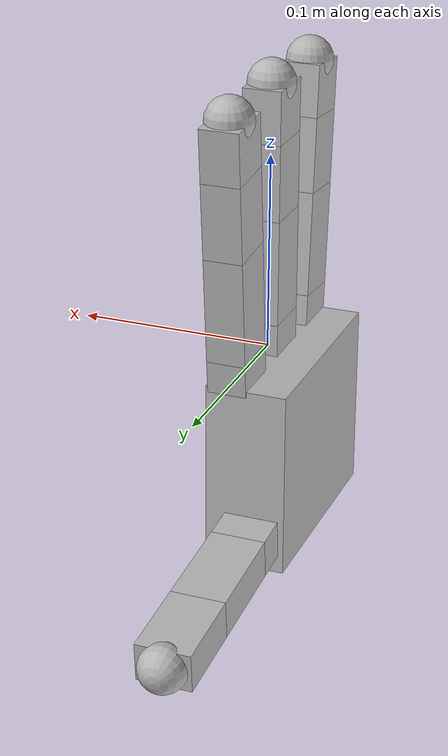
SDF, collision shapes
<sdf version='1.7'>
  <model name='allegro_hand_right'>
    <link name='palm_link'>
      <inertial>
        <pose>0 0 0.0475 0 -0 0</pose>
        <mass>0.4154</mass>
        <inertia>
          <ixx>0.0001</ixx>
          <ixy>0</ixy>
          <ixz>0</ixz>
          <iyy>0.0001</iyy>
          <iyz>0</iyz>
          <izz>0.0001</izz>
        </inertia>
      </inertial>
      <collision name='palm_link_collision'>
        <pose>-0.0093 0 -0.0475 0 -0 0</pose>
        <geometry>
          <box>
            <size>0.0408 0.113 0.095</size>
          </box>
        </geometry>
      </collision>
      <visual name='palm_link_visual'>
        <pose>0 0 0 0 -0 0</pose>
        <geometry>
          <mesh>
            <scale>1 1 1</scale>
            <uri>model://allegro_hand_description/meshes/base_link.STL</uri>
          </mesh>
        </geometry>
      </visual>
    </link>
    <joint name='joint_0.0' type='revolute'>
      <pose relative_to='palm_link'>0 0.0435 -0.001542 -0.087266 0 0</pose>
      <parent>palm_link</parent>
      <child>link_0.0</child>
      <axis>
        <xyz>0 0 1</xyz>
        <limit>
          <lower>-0.47</lower>
          <upper>0.47</upper>
          <effort>15</effort>
          <velocity>7</velocity>
        </limit>
        <dynamics>
          <damping>3</damping>
          <friction>10</friction>
          <spring_reference>0</spring_reference>
          <spring_stiffness>0</spring_stiffness>
        </dynamics>
      </axis>
    </joint>
    <link name='link_0.0'>
      <pose relative_to='joint_0.0'>0 0 0 0 -0 0</pose>
      <inertial>
        <pose>0 0 0 0 -0 0</pose>
        <mass>0.0119</mass>
        <inertia>
          <ixx>1.01667e-06</ixx>
          <ixy>0</ixy>
          <ixz>0</ixz>
          <iyy>6.47677e-07</iyy>
          <iyz>0</iyz>
          <izz>1.01667e-06</izz>
        </inertia>
      </inertial>
      <collision name='link_0.0_collision'>
        <pose>0 0 0.0082 0 -0 0</pose>
        <geometry>
          <box>
            <size>0.0196 0.0275 0.0164</size>
          </box>
        </geometry>
      </collision>
      <visual name='link_0.0_visual'>
        <pose>0 0 0 0 -0 0</pose>
        <geometry>
          <mesh>
            <scale>1 1 1</scale>
            <uri>model://allegro_hand_description/meshes/link_0.0.STL</uri>
          </mesh>
        </geometry>
      </visual>
    </link>
    <joint name='joint_1.0' type='revolute'>
      <pose relative_to='link_0.0'>0 0 0.0164 0 -0 0</pose>
      <parent>link_0.0</parent>
      <child>link_1.0</child>
      <axis>
        <xyz>0 1 0</xyz>
        <limit>
          <lower>-0.196</lower>
          <upper>1.61</upper>
          <effort>15</effort>
          <velocity>7</velocity>
        </limit>
        <dynamics>
          <damping>3</damping>
          <friction>5</friction>
          <spring_reference>0</spring_reference>
          <spring_stiffness>0</spring_stiffness>
        </dynamics>
      </axis>
    </joint>
    <link name='link_1.0'>
      <pose relative_to='joint_1.0'>0 0 0 0 -0 0</pose>
      <inertial>
        <pose>0 0 0 0 -0 0</pose>
        <mass>0.065</mass>
        <inertia>
          <ixx>7.95654e-05</ixx>
          <ixy>1.7199e-05</ixy>
          <ixz>8.75875e-06</ixz>
          <iyy>2.47089e-05</iyy>
          <iyz>2.41313e-05</iyz>
          <izz>7.95654e-05</izz>
        </inertia>
      </inertial>
      <collision name='link_1.0_collision'>
        <pose>0 0 0.027 0 -0 0</pose>
        <geometry>
          <box>
            <size>0.0196 0.0275 0.054</size>
          </box>
        </geometry>
      </collision>
      <visual name='link_1.0_visual'>
        <pose>0 0 0 0 -0 0</pose>
        <geometry>
          <mesh>
            <scale>1 1 1</scale>
            <uri>model://allegro_hand_description/meshes/link_1.0.STL</uri>
          </mesh>
        </geometry>
      </visual>
    </link>
    <joint name='joint_2.0' type='revolute'>
      <pose relative_to='link_1.0'>0 0 0.054 0 -0 0</pose>
      <parent>link_1.0</parent>
      <child>link_2.0</child>
      <axis>
        <xyz>0 1 0</xyz>
        <limit>
          <lower>-0.174</lower>
          <upper>1.709</upper>
          <effort>15</effort>
          <velocity>7</velocity>
        </limit>
        <dynamics>
          <damping>8</damping>
          <friction>10</friction>
          <spring_reference>0</spring_reference>
          <spring_stiffness>0</spring_stiffness>
        </dynamics>
      </axis>
    </joint>
    <link name='link_2.0'>
      <pose relative_to='joint_2.0'>0 0 0 0 -0 0</pose>
      <inertial>
        <pose>0 0 0 0 -0 0</pose>
        <mass>0.0355</mass>
        <inertia>
          <ixx>2.63979e-05</ixx>
          <ixy>6.67968e-06</ixy>
          <ixz>4.78363e-06</ixz>
          <iyy>1.34949e-05</iyy>
          <iyz>9.372e-06</iyz>
          <izz>2.63979e-05</izz>
        </inertia>
      </inertial>
      <collision name='link_2.0_collision'>
        <pose>0 0 0.0192 0 -0 0</pose>
        <geometry>
          <box>
            <size>0.0196 0.0275 0.0384</size>
          </box>
        </geometry>
      </collision>
      <visual name='link_2.0_visual'>
        <pose>0 0 0 0 -0 0</pose>
        <geometry>
          <mesh>
            <scale>1 1 1</scale>
            <uri>model://allegro_hand_description/meshes/link_2.0.STL</uri>
          </mesh>
        </geometry>
      </visual>
    </link>
    <joint name='joint_3.0' type='revolute'>
      <pose relative_to='link_2.0'>0 0 0.0384 0 -0 0</pose>
      <parent>link_2.0</parent>
      <child>link_3.0</child>
      <axis>
        <xyz>0 1 0</xyz>
        <limit>
          <lower>-0.227</lower>
          <upper>1.618</upper>
          <effort>15</effort>
          <velocity>7</velocity>
        </limit>
        <dynamics>
          <damping>10</damping>
          <friction>12</friction>
          <spring_reference>0</spring_reference>
          <spring_stiffness>0</spring_stiffness>
        </dynamics>
      </axis>
    </joint>
    <link name='link_3.0'>
      <pose relative_to='joint_3.0'>0 0 0 0 -0 0</pose>
      <inertial>
        <pose>0 0 0.016991 0 -0 0</pose>
        <mass>0.0264</mass>
        <inertia>
          <ixx>1.00244e-05</ixx>
          <ixy>1.25597e-06</ixy>
          <ixz>1.2936e-06</ixz>
          <iyy>8.97242e-06</iyy>
          <iyz>1.7622e-06</iyz>
          <izz>5.66925e-06</izz>
        </inertia>
      </inertial>
      <collision name='link_3.0_collision'>
        <pose>0 0 0.01335 0 -0 0</pose>
        <geometry>
          <box>
            <size>0.0196 0.0275 0.0267</size>
          </box>
        </geometry>
      </collision>
      <collision name='link_3.0_tip_collision_1'>
        <pose>0 0 0.0267 0 -0 0</pose>
        <geometry>
          <sphere>
            <radius>0.012</radius>
          </sphere>
        </geometry>
      </collision>
      <visual name='link_3.0_visual'>
        <pose>0 0 0 0 -0 0</pose>
        <geometry>
          <mesh>
            <scale>1 1 1</scale>
            <uri>model://allegro_hand_description/meshes/link_3.0.STL</uri>
          </mesh>
        </geometry>
      </visual>
      <visual name='link_3.0_tip_visual_1'>
        <pose>0 0 0.0267 0 -0 0</pose>
        <geometry>
          <mesh>
            <scale>1 1 1</scale>
            <uri>model://allegro_hand_description/meshes/link_3.0_tip.STL</uri>
          </mesh>
        </geometry>
      </visual>
    </link>
    <joint name='joint_12.0' type='revolute'>
      <pose relative_to='palm_link'>-0.0182 0.019333 -0.045987 3.14159 -1.48353 1.5708</pose>
      <parent>palm_link</parent>
      <child>link_12.0</child>
      <axis>
        <xyz>-1 0 0</xyz>
        <limit>
          <lower>0.263</lower>
          <upper>1.396</upper>
          <effort>15</effort>
          <velocity>7</velocity>
        </limit>
        <dynamics>
          <damping>3</damping>
          <friction>10</friction>
          <spring_reference>0</spring_reference>
          <spring_stiffness>0</spring_stiffness>
        </dynamics>
      </axis>
    </joint>
    <link name='link_12.0'>
      <pose relative_to='joint_12.0'>0 0 0 0 -0 0</pose>
      <inertial>
        <pose>0 0 0 0 -0 0</pose>
        <mass>0.0176</mass>
        <inertia>
          <ixx>1.89273e-05</ixx>
          <ixy>7.16716e-06</ixy>
          <ixz>5.35568e-06</ixz>
          <iyy>1.43008e-05</iyy>
          <iyz>6.8068e-06</iyz>
          <izz>1.89273e-05</izz>
        </inertia>
      </inertial>
      <collision name='link_12.0_collision'>
        <pose>-0.0179 0.009 0.0145 0 -0 0</pose>
        <geometry>
          <box>
            <size>0.0358 0.034 0.0455</size>
          </box>
        </geometry>
      </collision>
      <visual name='link_12.0_visual'>
        <pose>0 0 0 3.14159 -0 0</pose>
        <geometry>
          <mesh>
            <scale>1 1 1</scale>
            <uri>model://allegro_hand_description/meshes/link_12.0_right.STL</uri>
          </mesh>
        </geometry>
      </visual>
    </link>
    <joint name='joint_13.0' type='revolute'>
      <pose relative_to='link_12.0'>-0.027 0.005 0.0399 0 -0 0</pose>
      <parent>link_12.0</parent>
      <child>link_13.0</child>
      <axis>
        <xyz>0 0 1</xyz>
        <limit>
          <lower>-0.105</lower>
          <upper>1.163</upper>
          <effort>15</effort>
          <velocity>7</velocity>
        </limit>
        <dynamics>
          <damping>3</damping>
          <friction>5</friction>
          <spring_reference>0</spring_reference>
          <spring_stiffness>0</spring_stiffness>
        </dynamics>
      </axis>
    </joint>
    <link name='link_13.0'>
      <pose relative_to='joint_13.0'>0 0 0 0 -0 0</pose>
      <inertial>
        <pose>0 0 0 0 -0 0</pose>
        <mass>0.0119</mass>
        <inertia>
          <ixx>4.24251e-06</ixx>
          <ixy>1.03209e-06</ixy>
          <ixz>1.60353e-06</ixz>
          <iyy>4.52363e-06</iyy>
          <iyz>1.44808e-06</iyz>
          <izz>4.24251e-06</izz>
        </inertia>
      </inertial>
      <collision name='link_13.0_collision'>
        <pose>0 0 0.00885 0 -0 0</pose>
        <geometry>
          <box>
            <size>0.0196 0.0275 0.0177</size>
          </box>
        </geometry>
      </collision>
      <visual name='link_13.0_visual'>
        <pose>0 0 0 0 -0 0</pose>
        <geometry>
          <mesh>
            <scale>1 1 1</scale>
            <uri>model://allegro_hand_description/meshes/link_13.0.STL</uri>
          </mesh>
        </geometry>
      </visual>
    </link>
    <joint name='joint_14.0' type='revolute'>
      <pose relative_to='link_13.0'>0 0 0.0177 0 -0 0</pose>
      <parent>link_13.0</parent>
      <child>link_14.0</child>
      <axis>
        <xyz>0 1 0</xyz>
        <limit>
          <lower>-0.189</lower>
          <upper>1.644</upper>
          <effort>15</effort>
          <velocity>7</velocity>
        </limit>
        <dynamics>
          <damping>3</damping>
          <friction>10</friction>
          <spring_reference>0</spring_reference>
          <spring_stiffness>0</spring_stiffness>
        </dynamics>
      </axis>
    </joint>
    <link name='link_14.0'>
      <pose relative_to='joint_14.0'>0 0 0 0 -0 0</pose>
      <inertial>
        <pose>0 0 0 0 -0 0</pose>
        <mass>0.038</mass>
        <inertia>
          <ixx>4.3044e-05</ixx>
          <ixy>9.57068e-06</ixy>
          <ixz>5.1205e-06</ixz>
          <iyy>1.44452e-05</iyy>
          <iyz>1.34282e-05</iyz>
          <izz>4.3044e-05</izz>
        </inertia>
      </inertial>
      <collision name='link_14.0_collision'>
        <pose>0 0 0.0257 0 -0 0</pose>
        <geometry>
          <box>
            <size>0.0196 0.0275 0.0514</size>
          </box>
        </geometry>
      </collision>
      <visual name='link_14.0_visual'>
        <pose>0 0 0 0 -0 0</pose>
        <geometry>
          <mesh>
            <scale>1 1 1</scale>
            <uri>model://allegro_hand_description/meshes/link_14.0.STL</uri>
          </mesh>
        </geometry>
      </visual>
    </link>
    <joint name='joint_15.0' type='revolute'>
      <pose relative_to='link_14.0'>0 0 0.0514 0 -0 0</pose>
      <parent>link_14.0</parent>
      <child>link_15.0</child>
      <axis>
        <xyz>0 1 0</xyz>
        <limit>
          <lower>-0.162</lower>
          <upper>1.719</upper>
          <effort>15</effort>
          <velocity>7</velocity>
        </limit>
        <dynamics>
          <damping>3</damping>
          <friction>12</friction>
          <spring_reference>0</spring_reference>
          <spring_stiffness>0</spring_stiffness>
        </dynamics>
      </axis>
    </joint>
    <link name='link_15.0'>
      <pose relative_to='joint_15.0'>0 0 0 0 -0 0</pose>
      <inertial>
        <pose>0 0 0.012781 0 -0 0</pose>
        <mass>0.0556</mass>
        <inertia>
          <ixx>5.48675e-05</ixx>
          <ixy>8.04208e-06</ixy>
          <ixz>5.2283e-06</ixz>
          <iyy>3.66945e-05</iyy>
          <iyz>1.12835e-05</iyz>
          <izz>3.38903e-05</izz>
        </inertia>
      </inertial>
      <collision name='link_15.0_collision'>
        <pose>0 0 0.02115 0 -0 0</pose>
        <geometry>
          <box>
            <size>0.0196 0.0275 0.0423</size>
          </box>
        </geometry>
      </collision>
      <collision name='link_15.0_tip_collision_1'>
        <pose>0 0 0.0423 0 -0 0</pose>
        <geometry>
          <sphere>
            <radius>0.012</radius>
          </sphere>
        </geometry>
      </collision>
      <visual name='link_15.0_visual'>
        <pose>0 0 0 0 -0 0</pose>
        <geometry>
          <mesh>
            <scale>1 1 1</scale>
            <uri>model://allegro_hand_description/meshes/link_15.0.STL</uri>
          </mesh>
        </geometry>
      </visual>
      <visual name='link_15.0_tip_visual_1'>
        <pose>0 0 0.0423 0 -0 0</pose>
        <geometry>
          <mesh>
            <scale>1 1 1</scale>
            <uri>model://allegro_hand_description/meshes/link_15.0_tip.STL</uri>
          </mesh>
        </geometry>
      </visual>
    </link>
    <joint name='joint_4.0' type='revolute'>
      <pose relative_to='palm_link'>0 0 0.0007 0 -0 0</pose>
      <parent>palm_link</parent>
      <child>link_4.0</child>
      <axis>
        <xyz>0 0 1</xyz>
        <limit>
          <lower>-0.47</lower>
          <upper>0.47</upper>
          <effort>15</effort>
          <velocity>7</velocity>
        </limit>
        <dynamics>
          <damping>3</damping>
          <friction>10</friction>
          <spring_reference>0</spring_reference>
          <spring_stiffness>0</spring_stiffness>
        </dynamics>
      </axis>
    </joint>
    <link name='link_4.0'>
      <pose relative_to='joint_4.0'>0 0 0 0 -0 0</pose>
      <inertial>
        <pose>0 0 0 0 -0 0</pose>
        <mass>0.0119</mass>
        <inertia>
          <ixx>1.01667e-06</ixx>
          <ixy>0</ixy>
          <ixz>0</ixz>
          <iyy>6.47677e-07</iyy>
          <iyz>0</iyz>
          <izz>1.01667e-06</izz>
        </inertia>
      </inertial>
      <collision name='link_4.0_collision'>
        <pose>0 0 0.0082 0 -0 0</pose>
        <geometry>
          <box>
            <size>0.0196 0.0275 0.0164</size>
          </box>
        </geometry>
      </collision>
      <visual name='link_4.0_visual'>
        <pose>0 0 0 0 -0 0</pose>
        <geometry>
          <mesh>
            <scale>1 1 1</scale>
            <uri>model://allegro_hand_description/meshes/link_0.0.STL</uri>
          </mesh>
        </geometry>
      </visual>
    </link>
    <joint name='joint_5.0' type='revolute'>
      <pose relative_to='link_4.0'>0 0 0.0164 0 -0 0</pose>
      <parent>link_4.0</parent>
      <child>link_5.0</child>
      <axis>
        <xyz>0 1 0</xyz>
        <limit>
          <lower>-0.196</lower>
          <upper>1.61</upper>
          <effort>15</effort>
          <velocity>7</velocity>
        </limit>
        <dynamics>
          <damping>3</damping>
          <friction>5</friction>
          <spring_reference>0</spring_reference>
          <spring_stiffness>0</spring_stiffness>
        </dynamics>
      </axis>
    </joint>
    <link name='link_5.0'>
      <pose relative_to='joint_5.0'>0 0 0 0 -0 0</pose>
      <inertial>
        <pose>0 0 0 0 -0 0</pose>
        <mass>0.065</mass>
        <inertia>
          <ixx>7.95654e-05</ixx>
          <ixy>1.7199e-05</ixy>
          <ixz>8.75875e-06</ixz>
          <iyy>2.47089e-05</iyy>
          <iyz>2.41313e-05</iyz>
          <izz>7.95654e-05</izz>
        </inertia>
      </inertial>
      <collision name='link_5.0_collision'>
        <pose>0 0 0.027 0 -0 0</pose>
        <geometry>
          <box>
            <size>0.0196 0.0275 0.054</size>
          </box>
        </geometry>
      </collision>
      <visual name='link_5.0_visual'>
        <pose>0 0 0 0 -0 0</pose>
        <geometry>
          <mesh>
            <scale>1 1 1</scale>
            <uri>model://allegro_hand_description/meshes/link_1.0.STL</uri>
          </mesh>
        </geometry>
      </visual>
    </link>
    <joint name='joint_6.0' type='revolute'>
      <pose relative_to='link_5.0'>0 0 0.054 0 -0 0</pose>
      <parent>link_5.0</parent>
      <child>link_6.0</child>
      <axis>
        <xyz>0 1 0</xyz>
        <limit>
          <lower>-0.174</lower>
          <upper>1.709</upper>
          <effort>15</effort>
          <velocity>7</velocity>
        </limit>
        <dynamics>
          <damping>8</damping>
          <friction>10</friction>
          <spring_reference>0</spring_reference>
          <spring_stiffness>0</spring_stiffness>
        </dynamics>
      </axis>
    </joint>
    <link name='link_6.0'>
      <pose relative_to='joint_6.0'>0 0 0 0 -0 0</pose>
      <inertial>
        <pose>0 0 0 0 -0 0</pose>
        <mass>0.0355</mass>
        <inertia>
          <ixx>2.63979e-05</ixx>
          <ixy>6.67968e-06</ixy>
          <ixz>4.78363e-06</ixz>
          <iyy>1.34949e-05</iyy>
          <iyz>9.372e-06</iyz>
          <izz>2.63979e-05</izz>
        </inertia>
      </inertial>
      <collision name='link_6.0_collision'>
        <pose>0 0 0.0192 0 -0 0</pose>
        <geometry>
          <box>
            <size>0.0196 0.0275 0.0384</size>
          </box>
        </geometry>
      </collision>
      <visual name='link_6.0_visual'>
        <pose>0 0 0 0 -0 0</pose>
        <geometry>
          <mesh>
            <scale>1 1 1</scale>
            <uri>model://allegro_hand_description/meshes/link_2.0.STL</uri>
          </mesh>
        </geometry>
      </visual>
    </link>
    <joint name='joint_7.0' type='revolute'>
      <pose relative_to='link_6.0'>0 0 0.0384 0 -0 0</pose>
      <parent>link_6.0</parent>
      <child>link_7.0</child>
      <axis>
        <xyz>0 1 0</xyz>
        <limit>
          <lower>-0.227</lower>
          <upper>1.618</upper>
          <effort>15</effort>
          <velocity>7</velocity>
        </limit>
        <dynamics>
          <damping>10</damping>
          <friction>12</friction>
          <spring_reference>0</spring_reference>
          <spring_stiffness>0</spring_stiffness>
        </dynamics>
      </axis>
    </joint>
    <link name='link_7.0'>
      <pose relative_to='joint_7.0'>0 0 0 0 -0 0</pose>
      <inertial>
        <pose>0 0 0.016991 0 -0 0</pose>
        <mass>0.0264</mass>
        <inertia>
          <ixx>1.00244e-05</ixx>
          <ixy>1.25597e-06</ixy>
          <ixz>1.2936e-06</ixz>
          <iyy>8.97242e-06</iyy>
          <iyz>1.7622e-06</iyz>
          <izz>5.66925e-06</izz>
        </inertia>
      </inertial>
      <collision name='link_7.0_collision'>
        <pose>0 0 0.01335 0 -0 0</pose>
        <geometry>
          <box>
            <size>0.0196 0.0275 0.0267</size>
          </box>
        </geometry>
      </collision>
      <collision name='link_7.0_tip_collision_1'>
        <pose>0 0 0.0267 0 -0 0</pose>
        <geometry>
          <sphere>
            <radius>0.012</radius>
          </sphere>
        </geometry>
      </collision>
      <visual name='link_7.0_visual'>
        <pose>0 0 0 0 -0 0</pose>
        <geometry>
          <mesh>
            <scale>1 1 1</scale>
            <uri>model://allegro_hand_description/meshes/link_3.0.STL</uri>
          </mesh>
        </geometry>
      </visual>
      <visual name='link_7.0_tip_visual_1'>
        <pose>0 0 0.0267 0 -0 0</pose>
        <geometry>
          <mesh>
            <scale>1 1 1</scale>
            <uri>model://allegro_hand_description/meshes/link_3.0_tip.STL</uri>
          </mesh>
        </geometry>
      </visual>
    </link>
    <joint name='joint_8.0' type='revolute'>
      <pose relative_to='palm_link'>0 -0.0435 -0.001542 0.087266 -0 0</pose>
      <parent>palm_link</parent>
      <child>link_8.0</child>
      <axis>
        <xyz>0 0 1</xyz>
        <limit>
          <lower>-0.47</lower>
          <upper>0.47</upper>
          <effort>15</effort>
          <velocity>7</velocity>
        </limit>
        <dynamics>
          <damping>3</damping>
          <friction>10</friction>
          <spring_reference>0</spring_reference>
          <spring_stiffness>0</spring_stiffness>
        </dynamics>
      </axis>
    </joint>
    <link name='link_8.0'>
      <pose relative_to='joint_8.0'>0 0 0 0 -0 0</pose>
      <inertial>
        <pose>0 0 0 0 -0 0</pose>
        <mass>0.0119</mass>
        <inertia>
          <ixx>1.01667e-06</ixx>
          <ixy>0</ixy>
          <ixz>0</ixz>
          <iyy>6.47677e-07</iyy>
          <iyz>0</iyz>
          <izz>1.01667e-06</izz>
        </inertia>
      </inertial>
      <collision name='link_8.0_collision'>
        <pose>0 0 0.0082 0 -0 0</pose>
        <geometry>
          <box>
            <size>0.0196 0.0275 0.0164</size>
          </box>
        </geometry>
      </collision>
      <visual name='link_8.0_visual'>
        <pose>0 0 0 0 -0 0</pose>
        <geometry>
          <mesh>
            <scale>1 1 1</scale>
            <uri>model://allegro_hand_description/meshes/link_0.0.STL</uri>
          </mesh>
        </geometry>
      </visual>
    </link>
    <joint name='joint_9.0' type='revolute'>
      <pose relative_to='link_8.0'>0 0 0.0164 0 -0 0</pose>
      <parent>link_8.0</parent>
      <child>link_9.0</child>
      <axis>
        <xyz>0 1 0</xyz>
        <limit>
          <lower>-0.196</lower>
          <upper>1.61</upper>
          <effort>15</effort>
          <velocity>7</velocity>
        </limit>
        <dynamics>
          <damping>3</damping>
          <friction>5</friction>
          <spring_reference>0</spring_reference>
          <spring_stiffness>0</spring_stiffness>
        </dynamics>
      </axis>
    </joint>
    <link name='link_9.0'>
      <pose relative_to='joint_9.0'>0 0 0 0 -0 0</pose>
      <inertial>
        <pose>0 0 0 0 -0 0</pose>
        <mass>0.065</mass>
        <inertia>
          <ixx>7.95654e-05</ixx>
          <ixy>1.7199e-05</ixy>
          <ixz>8.75875e-06</ixz>
          <iyy>2.47089e-05</iyy>
          <iyz>2.41313e-05</iyz>
          <izz>7.95654e-05</izz>
        </inertia>
      </inertial>
      <collision name='link_9.0_collision'>
        <pose>0 0 0.027 0 -0 0</pose>
        <geometry>
          <box>
            <size>0.0196 0.0275 0.054</size>
          </box>
        </geometry>
      </collision>
      <visual name='link_9.0_visual'>
        <pose>0 0 0 0 -0 0</pose>
        <geometry>
          <mesh>
            <scale>1 1 1</scale>
            <uri>model://allegro_hand_description/meshes/link_1.0.STL</uri>
          </mesh>
        </geometry>
      </visual>
    </link>
    <joint name='joint_10.0' type='revolute'>
      <pose relative_to='link_9.0'>0 0 0.054 0 -0 0</pose>
      <parent>link_9.0</parent>
      <child>link_10.0</child>
      <axis>
        <xyz>0 1 0</xyz>
        <limit>
          <lower>-0.174</lower>
          <upper>1.709</upper>
          <effort>15</effort>
          <velocity>7</velocity>
        </limit>
        <dynamics>
          <damping>8</damping>
          <friction>10</friction>
          <spring_reference>0</spring_reference>
          <spring_stiffness>0</spring_stiffness>
        </dynamics>
      </axis>
    </joint>
    <link name='link_10.0'>
      <pose relative_to='joint_10.0'>0 0 0 0 -0 0</pose>
      <inertial>
        <pose>0 0 0 0 -0 0</pose>
        <mass>0.0355</mass>
        <inertia>
          <ixx>2.63979e-05</ixx>
          <ixy>6.67968e-06</ixy>
          <ixz>4.78363e-06</ixz>
          <iyy>1.34949e-05</iyy>
          <iyz>9.372e-06</iyz>
          <izz>2.63979e-05</izz>
        </inertia>
      </inertial>
      <collision name='link_10.0_collision'>
        <pose>0 0 0.0192 0 -0 0</pose>
        <geometry>
          <box>
            <size>0.0196 0.0275 0.0384</size>
          </box>
        </geometry>
      </collision>
      <visual name='link_10.0_visual'>
        <pose>0 0 0 0 -0 0</pose>
        <geometry>
          <mesh>
            <scale>1 1 1</scale>
            <uri>model://allegro_hand_description/meshes/link_2.0.STL</uri>
          </mesh>
        </geometry>
      </visual>
    </link>
    <joint name='joint_11.0' type='revolute'>
      <pose relative_to='link_10.0'>0 0 0.0384 0 -0 0</pose>
      <parent>link_10.0</parent>
      <child>link_11.0</child>
      <axis>
        <xyz>0 1 0</xyz>
        <limit>
          <lower>-0.227</lower>
          <upper>1.618</upper>
          <effort>15</effort>
          <velocity>7</velocity>
        </limit>
        <dynamics>
          <damping>10</damping>
          <friction>12</friction>
          <spring_reference>0</spring_reference>
          <spring_stiffness>0</spring_stiffness>
        </dynamics>
      </axis>
    </joint>
    <link name='link_11.0'>
      <pose relative_to='joint_11.0'>0 0 0 0 -0 0</pose>
      <inertial>
        <pose>0 0 0.016991 0 -0 0</pose>
        <mass>0.0264</mass>
        <inertia>
          <ixx>1.00244e-05</ixx>
          <ixy>1.25597e-06</ixy>
          <ixz>1.2936e-06</ixz>
          <iyy>8.97242e-06</iyy>
          <iyz>1.7622e-06</iyz>
          <izz>5.66925e-06</izz>
        </inertia>
      </inertial>
      <collision name='link_11.0_collision'>
        <pose>0 0 0.01335 0 -0 0</pose>
        <geometry>
          <box>
            <size>0.0196 0.0275 0.0267</size>
          </box>
        </geometry>
      </collision>
      <collision name='link_11.0_tip_collision_1'>
        <pose>0 0 0.0267 0 -0 0</pose>
        <geometry>
          <sphere>
            <radius>0.012</radius>
          </sphere>
        </geometry>
      </collision>
      <visual name='link_11.0_visual'>
        <pose>0 0 0 0 -0 0</pose>
        <geometry>
          <mesh>
            <scale>1 1 1</scale>
            <uri>model://allegro_hand_description/meshes/link_3.0.STL</uri>
          </mesh>
        </geometry>
      </visual>
      <visual name='link_11.0_tip_visual_1'>
        <pose>0 0 0.0267 0 -0 0</pose>
        <geometry>
          <mesh>
            <scale>1 1 1</scale>
            <uri>model://allegro_hand_description/meshes/link_3.0_tip.STL</uri>
          </mesh>
        </geometry>
      </visual>
    </link>
  </model>
</sdf>
